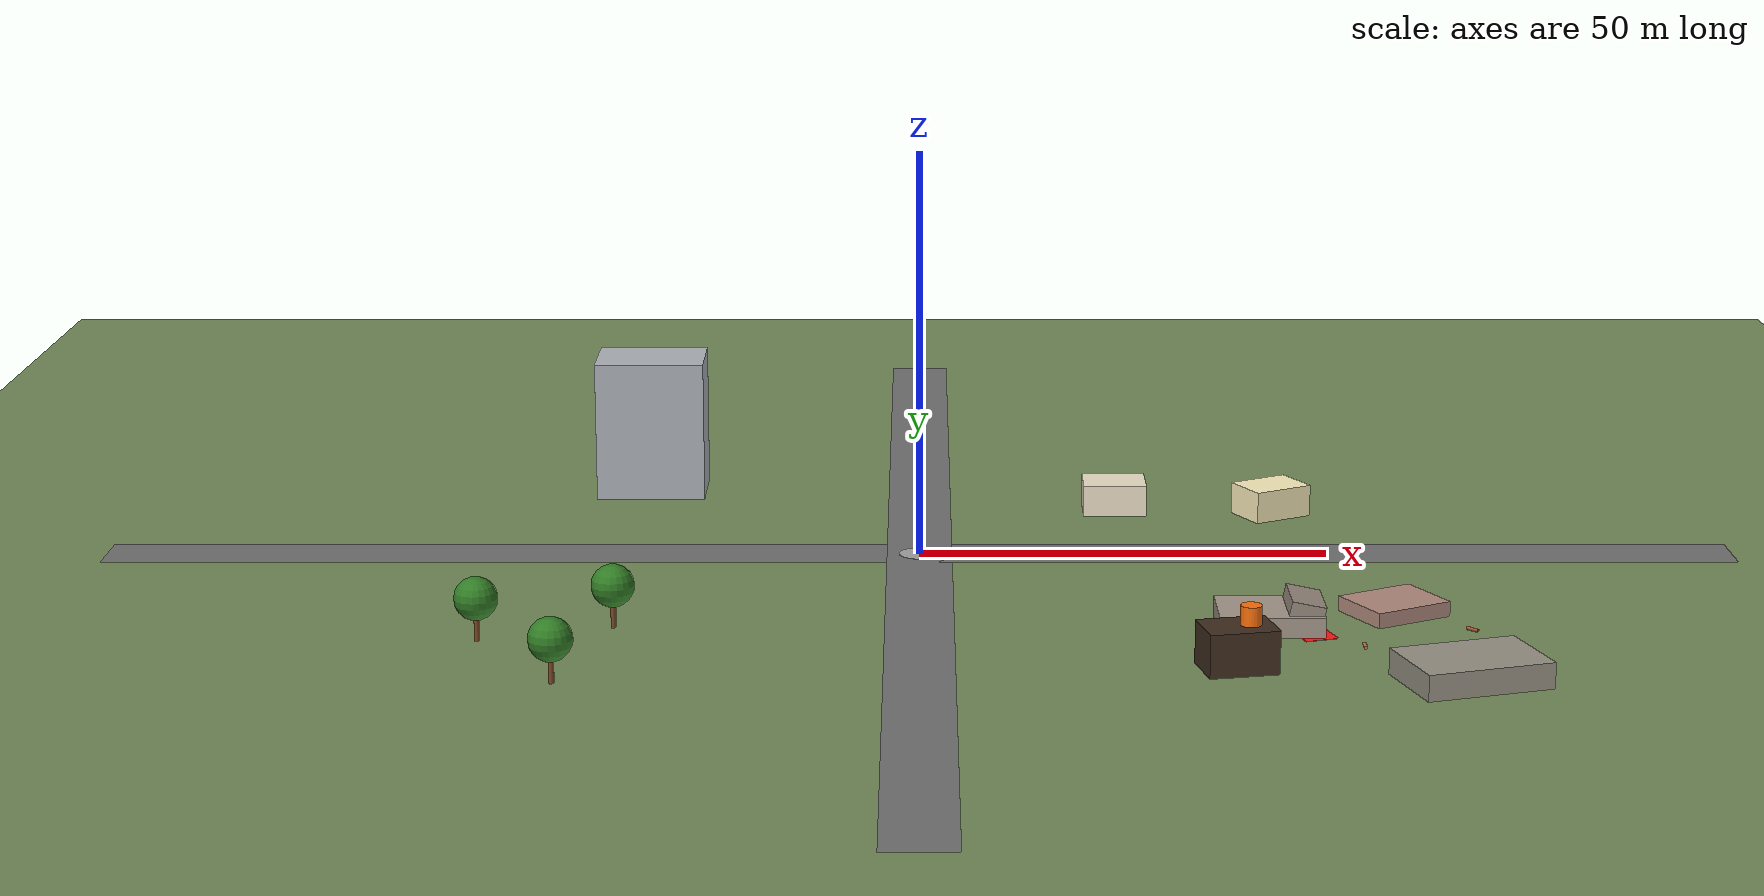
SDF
<?xml version="1.0" encoding="UTF-8"?>
<sdf version="1.9">
  <world name="urban_rescue">
    <physics type="ode"><max_step_size>0.004</max_step_size><real_time_factor>1.0</real_time_factor><real_time_update_rate>250</real_time_update_rate></physics>
    <magnetic_field>6e-06 2.3e-05 -4.2e-05</magnetic_field>
    <plugin name="gz::sim::systems::Physics" filename="gz-sim-physics-system"/>
    <plugin name="gz::sim::systems::UserCommands" filename="gz-sim-user-commands-system"/>
    <plugin name="gz::sim::systems::SceneBroadcaster" filename="gz-sim-scene-broadcaster-system"/>
    <plugin name="gz::sim::systems::Contact" filename="gz-sim-contact-system"/>
    <plugin name="gz::sim::systems::Imu" filename="gz-sim-imu-system"/>
    <plugin name="gz::sim::systems::AirPressure" filename="gz-sim-air-pressure-system"/>
    <plugin name="gz::sim::systems::ApplyLinkWrench" filename="gz-sim-apply-link-wrench-system"/>
    <plugin name="gz::sim::systems::NavSat" filename="gz-sim-navsat-system"/>
    <plugin name="gz::sim::systems::Magnetometer" filename="gz-sim-magnetometer-system"/>
    <plugin name="gz::sim::systems::Sensors" filename="gz-sim-sensors-system"><render_engine>ogre2</render_engine></plugin>
    <gui fullscreen="false">
      <plugin filename="MinimalScene" name="3D View"><gz-gui><title>3D View</title><property type="bool" key="showTitleBar">false</property><property type="string" key="state">docked</property></gz-gui><engine>ogre2</engine><scene>scene</scene><ambient_light>0.7 0.7 0.7</ambient_light><background_color>0.75 0.85 0.95</background_color><camera_pose>-30 -80 80 0 0.7 1.2</camera_pose><camera_clip><near>0.25</near><far>25000</far></camera_clip></plugin>
      <plugin filename="GzSceneManager" name="Scene Manager"><gz-gui><property key="resizable" type="bool">false</property><property key="width" type="double">5</property><property key="height" type="double">5</property><property key="showTitleBar" type="bool">false</property></gz-gui></plugin>
      <plugin filename="InteractiveViewControl" name="Interactive view control"><gz-gui><property key="resizable" type="bool">false</property><property key="width" type="double">5</property><property key="height" type="double">5</property><property key="showTitleBar" type="bool">false</property></gz-gui></plugin>
      <plugin filename="WorldControl" name="World control"><gz-gui><title>World control</title><property type="bool" key="showTitleBar">false</property><property type="bool" key="resizable">false</property><property type="double" key="height">72</property><property type="double" key="width">121</property><property type="double" key="z">1</property><property type="string" key="state">floating</property><anchors target="3D View"><line own="left" target="left"/><line own="bottom" target="bottom"/></anchors></gz-gui><play_pause>true</play_pause><step>true</step><start_paused>true</start_paused><use_event>true</use_event></plugin>
    </gui>
    <light type="directional" name="sun"><cast_shadows>true</cast_shadows><pose>0 0 100 0 0 0</pose><diffuse>0.85 0.83 0.78 1</diffuse><specular>0.15 0.15 0.15 1</specular><direction>-0.4 0.3 -0.9</direction></light>
    <model name="ground"><static>true</static><link name="l"><collision name="c"><geometry><plane><normal>0 0 1</normal><size>300 300</size></plane></geometry></collision><visual name="v"><geometry><plane><normal>0 0 1</normal><size>300 300</size></plane></geometry><material><ambient>0.4 0.5 0.3 1</ambient><diffuse>0.45 0.55 0.35 1</diffuse></material></visual></link></model>
    <spherical_coordinates><surface_model>EARTH_WGS84</surface_model><world_frame_orientation>ENU</world_frame_orientation><latitude_deg>47.397742</latitude_deg><longitude_deg>8.545594</longitude_deg><elevation>488.0</elevation><heading_deg>0</heading_deg></spherical_coordinates>
    <model name="helipad"><static>true</static><pose>0 0 0.01 0 0 0</pose><link name="l"><visual name="v"><geometry><cylinder><radius>2.5</radius><length>0.02</length></cylinder></geometry><material><ambient>0.55 0.55 0.55 1</ambient><diffuse>0.65 0.65 0.65 1</diffuse></material></visual></link></model>
    <model name="road_ns"><static>true</static><pose>0 0 0.005 0 0 0</pose><link name="l"><visual name="v"><geometry><box><size>8 200 0.01</size></box></geometry><material><ambient>0.35 0.35 0.35 1</ambient><diffuse>0.45 0.45 0.45 1</diffuse></material></visual></link></model>
    <model name="road_ew"><static>true</static><pose>0 0 0.005 0 0 0</pose><link name="l"><visual name="v"><geometry><box><size>200 8 0.01</size></box></geometry><material><ambient>0.35 0.35 0.35 1</ambient><diffuse>0.45 0.45 0.45 1</diffuse></material></visual></link></model>
    <model name="house1"><static>true</static><pose>25 20 0 0 0 0</pose><link name="b"><visual name="w"><pose>0 0 2 0 0 0</pose><geometry><box><size>8 6 4</size></box></geometry><material><ambient>0.85 0.8 0.7 1</ambient><diffuse>0.95 0.9 0.8 1</diffuse></material></visual><collision name="c"><pose>0 0 2 0 0 0</pose><geometry><box><size>8 6 4</size></box></geometry></collision></link></model>
    <model name="house2"><static>true</static><pose>45 18 0 0 0 0.5</pose><link name="b"><visual name="w"><pose>0 0 2 0 0 0</pose><geometry><box><size>8 6 4</size></box></geometry><material><ambient>0.9 0.85 0.65 1</ambient><diffuse>1.0 0.95 0.75 1</diffuse></material></visual><collision name="c"><pose>0 0 2 0 0 0</pose><geometry><box><size>8 6 4</size></box></geometry></collision></link></model>
    <model name="office1"><static>true</static><pose>-35 30 0 0 0 0</pose><link name="b"><visual name="w"><pose>0 0 9 0 0 0</pose><geometry><box><size>14 10 18</size></box></geometry><material><ambient>0.6 0.62 0.65 1</ambient><diffuse>0.7 0.72 0.75 1</diffuse></material></visual><collision name="c"><pose>0 0 9 0 0 0</pose><geometry><box><size>14 10 18</size></box></geometry></collision></link></model>
    <model name="ruin1"><static>true</static><pose>40 -30 0 0 0 0</pose><link name="b"><visual name="base"><pose>0 0 1.3 0 0 0</pose><geometry><box><size>12 9 2.4</size></box></geometry><material><ambient>0.55 0.5 0.45 1</ambient><diffuse>0.65 0.6 0.55 1</diffuse></material></visual><visual name="w1"><pose>4 0 2.8 0 0.2 0</pose><geometry><box><size>4 7.2 2</size></box></geometry><material><ambient>0.5 0.45 0.4 1</ambient><diffuse>0.6 0.55 0.5 1</diffuse></material></visual><collision name="c"><pose>0 0 1.3 0 0 0</pose><geometry><box><size>12 9 2.4</size></box></geometry></collision></link></model>
    <model name="ruin2"><static>true</static><pose>60 -50 0 0 0 0.3</pose><link name="b"><visual name="base"><pose>0 0 1.7 0 0 0</pose><geometry><box><size>15 10 3</size></box></geometry><material><ambient>0.5 0.48 0.42 1</ambient><diffuse>0.6 0.58 0.52 1</diffuse></material></visual><collision name="c"><pose>0 0 1.7 0 0 0</pose><geometry><box><size>15 10 3</size></box></geometry></collision></link></model>
    <model name="ruin3"><static>true</static><pose>55 -25 0 0 0 0.5</pose><link name="b"><visual name="base"><pose>0 0 1 0 0 0</pose><geometry><box><size>10 8 1.8</size></box></geometry><material><ambient>0.6 0.45 0.4 1</ambient><diffuse>0.7 0.55 0.5 1</diffuse></material></visual><collision name="c"><pose>0 0 1 0 0 0</pose><geometry><box><size>10 8 1.8</size></box></geometry></collision></link></model>
    <model name="victim1"><static>true</static><pose>43 -33 0 0 0 0</pose><link name="l"><visual name="body"><pose>0 0 0.4 1.57 0 0</pose><geometry><cylinder><radius>0.2</radius><length>1.5</length></cylinder></geometry><material><ambient>0.8 0.5 0.3 1</ambient><diffuse>0.8 0.5 0.3 1</diffuse></material></visual><visual name="head"><pose>0 0.75 0.4 0 0 0</pose><geometry><sphere><radius>0.15</radius></sphere></geometry><material><ambient>0.85 0.7 0.55 1</ambient></material></visual></link></model>
    <model name="victim2"><static>true</static><pose>58 -48 0 0 0 0.5</pose><link name="l"><visual name="body"><pose>0 0 0.4 1.57 0 0</pose><geometry><cylinder><radius>0.2</radius><length>1.5</length></cylinder></geometry><material><ambient>0.7 0.4 0.25 1</ambient><diffuse>0.7 0.4 0.25 1</diffuse></material></visual><visual name="head"><pose>0 0.75 0.4 0 0 0</pose><geometry><sphere><radius>0.15</radius></sphere></geometry><material><ambient>0.85 0.7 0.55 1</ambient></material></visual></link></model>
    <model name="victim3"><static>true</static><pose>50 -38 0 0 0 0</pose><link name="l"><visual name="body"><pose>0 0 0.4 1.57 0 0</pose><geometry><cylinder><radius>0.2</radius><length>1.5</length></cylinder></geometry><material><ambient>0.75 0.45 0.3 1</ambient><diffuse>0.75 0.45 0.3 1</diffuse></material></visual><visual name="head"><pose>0 0.75 0.4 0 0 0</pose><geometry><sphere><radius>0.15</radius></sphere></geometry><material><ambient>0.85 0.7 0.55 1</ambient></material></visual></link></model>
    <model name="victim4"><static>true</static><pose>63 -32 0 0 0 0.8</pose><link name="l"><visual name="body"><pose>0 0 0.4 1.57 0 0</pose><geometry><cylinder><radius>0.2</radius><length>1.5</length></cylinder></geometry><material><ambient>0.65 0.35 0.2 1</ambient><diffuse>0.65 0.35 0.2 1</diffuse></material></visual><visual name="head"><pose>0 0.75 0.4 0 0 0</pose><geometry><sphere><radius>0.15</radius></sphere></geometry><material><ambient>0.85 0.7 0.55 1</ambient></material></visual></link></model>
    <model name="sos_signal"><static>true</static><pose>45 -33 0.05 0 0 0.3</pose><link name="l"><visual name="v"><geometry><box><size>4 4 0.05</size></box></geometry><material><ambient>0.95 0.05 0.05 1</ambient><diffuse>1.0 0.1 0.1 1</diffuse><emissive>0.5 0.0 0.0 1</emissive></material></visual></link></model>
    <model name="fire_building"><static>true</static><pose>35 -45 0 0 0 0.2</pose><link name="body"><visual name="base"><pose>0 0 2.5 0 0 0</pose><geometry><box><size>8 6 5</size></box></geometry><material><ambient>0.15 0.1 0.08 1</ambient><diffuse>0.25 0.18 0.12 1</diffuse></material></visual><visual name="flames"><pose>1.5 0 5.5 0 0 0</pose><geometry><cylinder><radius>1.2</radius><length>3.5</length></cylinder></geometry><material><ambient>1.0 0.35 0.0 1</ambient><diffuse>1.0 0.45 0.05 1</diffuse><emissive>1.0 0.3 0.0 1</emissive></material></visual><collision name="c"><pose>0 0 2.5 0 0 0</pose><geometry><box><size>8 6 5</size></box></geometry></collision></link></model>
    <model name="tree1"><static>true</static><pose>-35 -30 0 0 0 0</pose><link name="l"><visual name="trunk"><pose>0 0 2 0 0 0</pose><geometry><cylinder><radius>0.3</radius><length>4</length></cylinder></geometry><material><ambient>0.4 0.25 0.1 1</ambient><diffuse>0.5 0.3 0.15 1</diffuse></material></visual><visual name="crown"><pose>0 0 5 0 0 0</pose><geometry><sphere><radius>2.5</radius></sphere></geometry><material><ambient>0.15 0.4 0.1 1</ambient><diffuse>0.2 0.5 0.15 1</diffuse></material></visual></link></model>
    <model name="tree2"><static>true</static><pose>-50 -35 0 0 0 0</pose><link name="l"><visual name="trunk"><pose>0 0 2 0 0 0</pose><geometry><cylinder><radius>0.3</radius><length>4</length></cylinder></geometry><material><ambient>0.4 0.25 0.1 1</ambient><diffuse>0.5 0.3 0.15 1</diffuse></material></visual><visual name="crown"><pose>0 0 5 0 0 0</pose><geometry><sphere><radius>2.5</radius></sphere></geometry><material><ambient>0.15 0.4 0.1 1</ambient><diffuse>0.2 0.5 0.15 1</diffuse></material></visual></link></model>
    <model name="tree3"><static>true</static><pose>-40 -50 0 0 0 0</pose><link name="l"><visual name="trunk"><pose>0 0 2 0 0 0</pose><geometry><cylinder><radius>0.3</radius><length>4</length></cylinder></geometry><material><ambient>0.4 0.25 0.1 1</ambient><diffuse>0.5 0.3 0.15 1</diffuse></material></visual><visual name="crown"><pose>0 0 5 0 0 0</pose><geometry><sphere><radius>2.5</radius></sphere></geometry><material><ambient>0.15 0.4 0.1 1</ambient><diffuse>0.2 0.5 0.15 1</diffuse></material></visual></link></model>
  </world>
</sdf>
